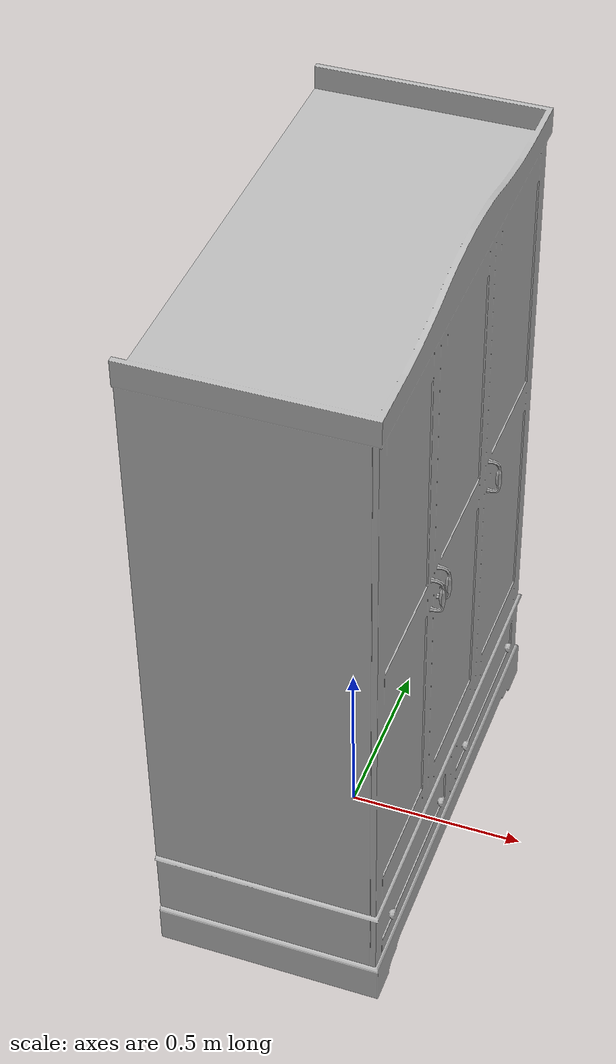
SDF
<?xml version='1.0'?>
<sdf version='1.4'>
  <model name='s__590'>
    <pose>0 0 0 0 0 0</pose>
    <static>true</static>
    <link name='link'>
      <collision name='collision'>
        <pose>0 0 0 0 0 0</pose>
        <geometry>
          <box>
            <size>0.659606 1.30005 2</size>
          </box>
        </geometry>
      </collision>
      <visual name='visual'>
        <pose>0 0 0 0 0 0</pose>
        <geometry>
          <mesh><uri>model://s__590/s__590.dae</uri></mesh>
        </geometry>
      </visual>
    </link>
  </model>
</sdf>
